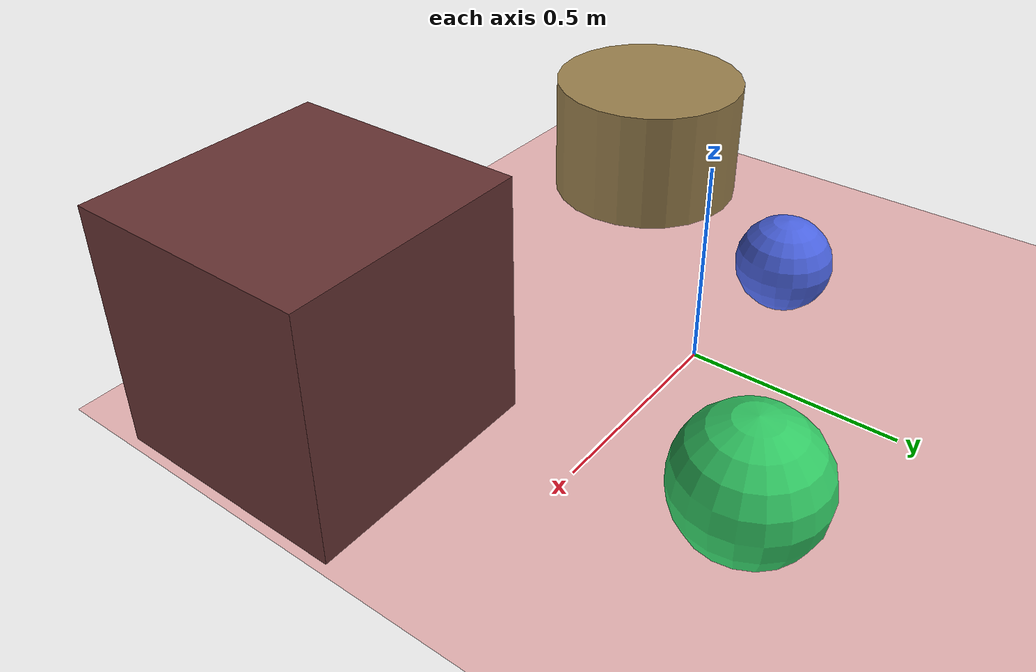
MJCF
<mujoco>
   <asset>
<texture type="skybox" builtin="gradient" rgb1="0.8 0.1 0.6" rgb2="0.2 0.8 0.5" width="256" height="256"/>
<texture name="flat_0" builtin="flat" rgb1="0.4 0.2 0.2" rgb2="0.4 0.2 0.2"  width="200" height="200"/>
<texture name="flat_1" builtin="flat" rgb1="0.2 0.8 0.4" rgb2="0.2 0.8 0.4"  width="200" height="200"/>
<texture name="flat_2" builtin="flat" rgb1="0.6 0.5 0.3" rgb2="0.6 0.5 0.3"  width="200" height="200"/>
<texture name="flat_3" builtin="flat" rgb1="0.3 0.4 0.9" rgb2="0.3 0.4 0.9"  width="200" height="200"/><material name="flat_0_mat" reflectance="0" texture="flat_0" texuniform="true"/>
<material name="flat_1_mat" reflectance="0" texture="flat_1" texuniform="true"/>
<material name="flat_2_mat" reflectance="0" texture="flat_2" texuniform="true"/>
<material name="flat_3_mat" reflectance="0" texture="flat_3" texuniform="true"/>
   </asset>

   <worldbody>
      <light diffuse=".9 .9 .9" pos="0 0 3" dir="0 0 -1"/>
     <geom type="plane" size="1 1 0.1" rgba="0.9 0.7 0.7 1"/>
<geom type="box" pos="0.69 -0.52 0.29" size="0.29 0.29 0.29" material="flat_0_mat" />
<geom type="sphere" pos="0.46 0.37 0.16" size="0.16 0.16 0.16" material="flat_1_mat" />
<geom type="cylinder" pos="-0.65 -0.55 0.17" size="0.27 0.17 0.17" material="flat_2_mat" />
<geom type="sphere" pos="-0.32 0.06 0.12" size="0.12 0.12 0.12" material="flat_3_mat" /><camera euler="60 0 180" fovy="60" name="camera_a" pos="0 -1.5 1"></camera>   </worldbody>
</mujoco>
